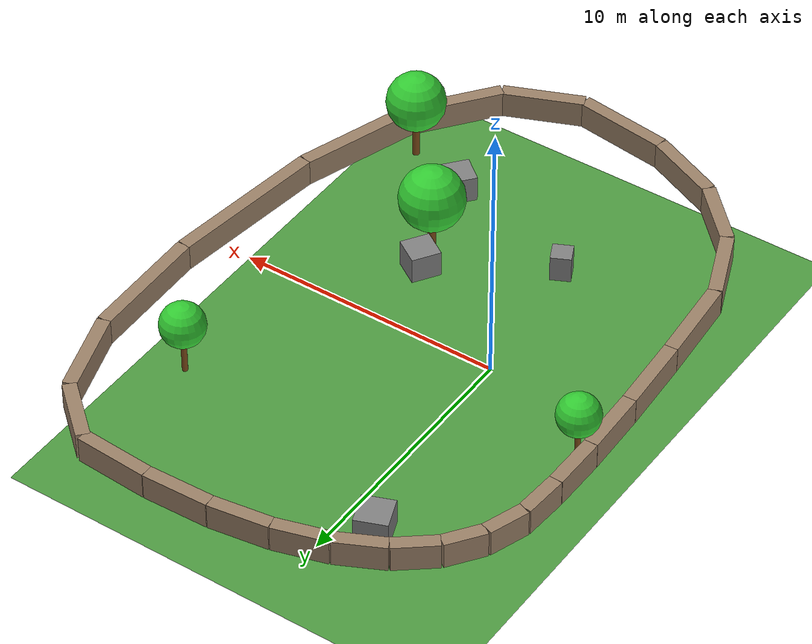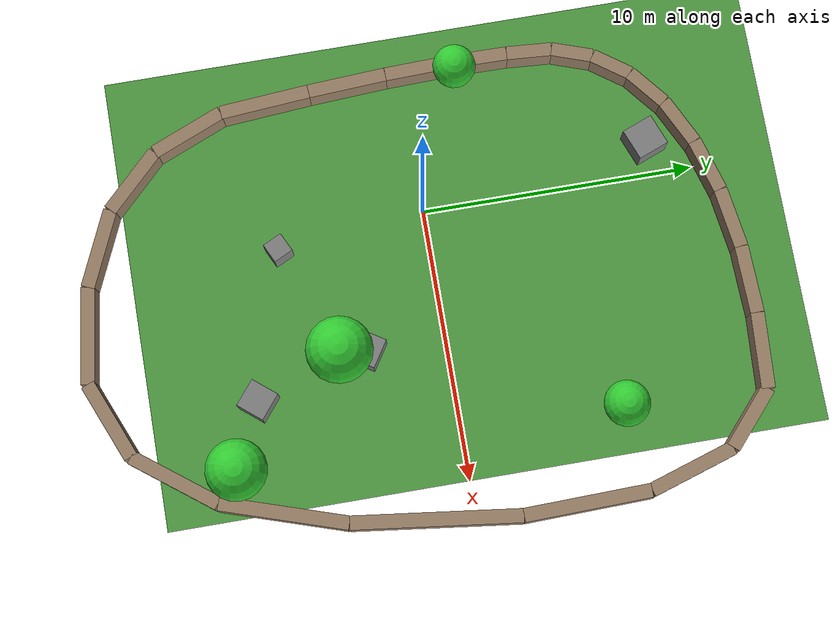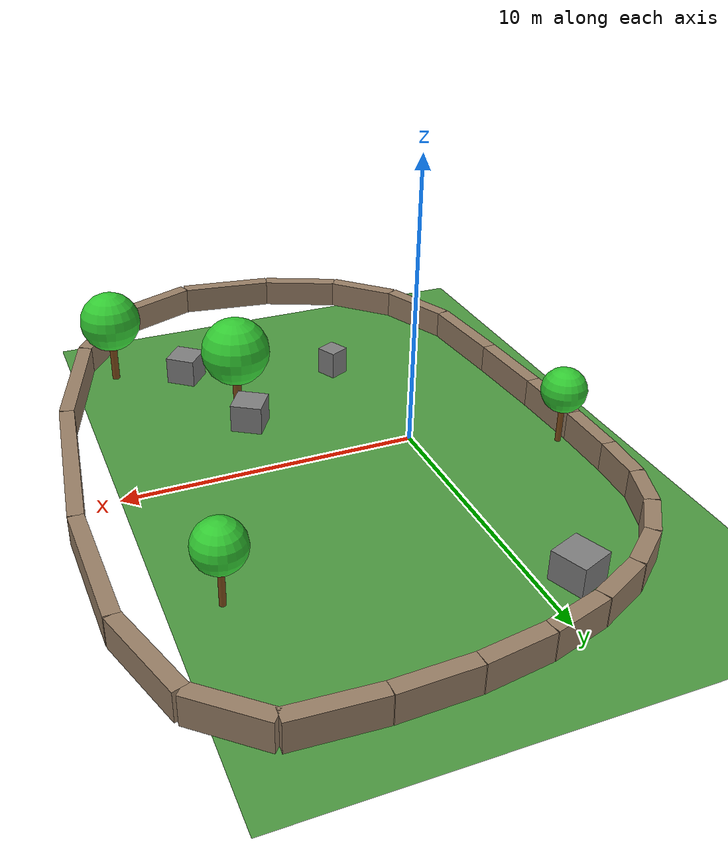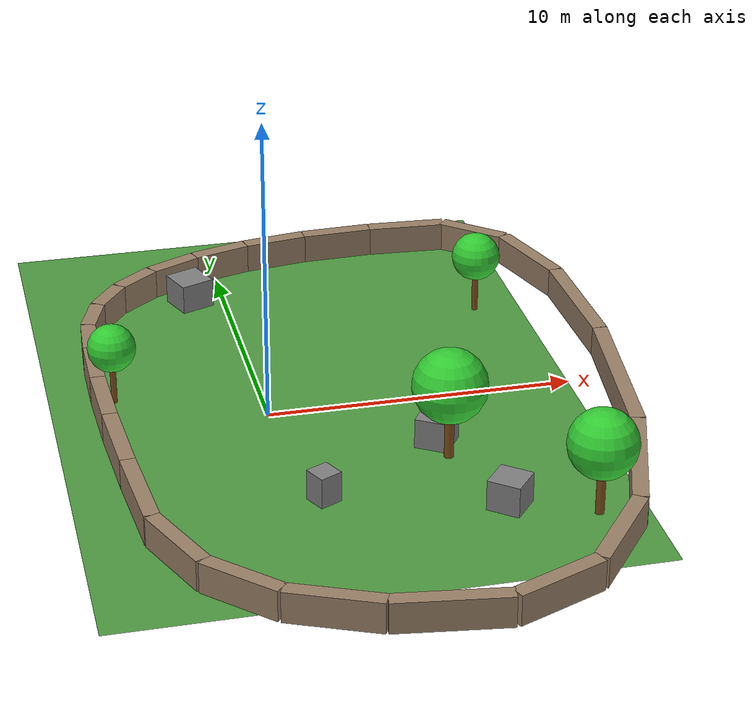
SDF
<?xml version="1.0" ?>
<sdf version="1.6">
  <world name="eval_lvl5_ep000">
    <light name="sun" type="directional">
      <cast_shadows>true</cast_shadows>
      <diffuse>0.8 0.8 0.8 1</diffuse>
      <specular>0.2 0.2 0.2 1</specular>
      <pose>0 0 10 0 0 0</pose>
      <direction>-0.5 0.5 -1</direction>
    </light>
    <include>
      <uri>model://ground_plane</uri>
    </include>
    <physics type="ode">
      <max_step_size>0.001</max_step_size>
      <real_time_factor>1</real_time_factor>
      <real_time_update_rate>1000</real_time_update_rate>
    </physics>
    <gravity>0 0 -9.8</gravity>
    <atmosphere type="adiabatic"/>
    <scene>
      <ambient>0.4 0.4 0.4 1</ambient>
      <background>0.7 0.7 0.7 1</background>
      <shadows>1</shadows>
    </scene>
    <model name="eval_lvl5_ep000_field">
      <static>true</static>
      <link name="link">
        <collision name="collision">
          <geometry>
            <plane>
              <normal>0 0 1</normal>
              <size>16.735694553609477 23.920495001508208</size>
            </plane>
          </geometry>
        </collision>
        <visual name="visual">
          <geometry>
            <plane>
              <normal>0 0 1</normal>
              <size>16.735694553609477 23.920495001508208</size>
            </plane>
          </geometry>
          <material>
            <script>
              <uri>file://media/materials/scripts/gazebo.material</uri>
              <name>Gazebo/Grass</name>
            </script>
          </material>
        </visual>
      </link>
      <pose>1.6125757476920934 1.0931630792911786 0.01 0 0 0</pose>
    </model>
    <model name="eval_lvl5_ep000_boundary_0">
      <static>true</static>
      <pose>-4.800457919085142 -5.055350329046413 0.5 0 0 -1.490851708856075</pose>
      <link name="link">
        <collision name="collision">
          <geometry>
            <box>
              <size>3.2945891925479134 0.5 1.0</size>
            </box>
          </geometry>
        </collision>
        <visual name="visual">
          <geometry>
            <box>
              <size>3.2945891925479134 0.5 1.0</size>
            </box>
          </geometry>
          <material>
            <ambient>0.4 0.3 0.2 1</ambient>
            <diffuse>0.6 0.5 0.4 1</diffuse>
          </material>
        </visual>
      </link>
    </model>
    <model name="eval_lvl5_ep000_boundary_1">
      <static>true</static>
      <pose>-4.134979083006348 -7.988133066880042 0.5 0 0 -1.1785729148689155</pose>
      <link name="link">
        <collision name="collision">
          <geometry>
            <box>
              <size>2.793644021988193 0.5 1.0</size>
            </box>
          </geometry>
        </collision>
        <visual name="visual">
          <geometry>
            <box>
              <size>2.793644021988193 0.5 1.0</size>
            </box>
          </geometry>
          <material>
            <ambient>0.4 0.3 0.2 1</ambient>
            <diffuse>0.6 0.5 0.4 1</diffuse>
          </material>
        </visual>
      </link>
    </model>
    <model name="eval_lvl5_ep000_boundary_2">
      <static>true</static>
      <pose>-2.6647509929640183 -10.218347870405477 0.5 0 0 -0.7870849704738967</pose>
      <link name="link">
        <collision name="collision">
          <geometry>
            <box>
              <size>2.652738589396461 0.5 1.0</size>
            </box>
          </geometry>
        </collision>
        <visual name="visual">
          <geometry>
            <box>
              <size>2.652738589396461 0.5 1.0</size>
            </box>
          </geometry>
          <material>
            <ambient>0.4 0.3 0.2 1</ambient>
            <diffuse>0.6 0.5 0.4 1</diffuse>
          </material>
        </visual>
      </link>
    </model>
    <model name="eval_lvl5_ep000_boundary_3">
      <static>true</static>
      <pose>-0.38977364895815303 -11.745994739622715 0.5 0 0 -0.4139835599299639</pose>
      <link name="link">
        <collision name="collision">
          <geometry>
            <box>
              <size>2.9243876716163637 0.5 1.0</size>
            </box>
          </geometry>
        </collision>
        <visual name="visual">
          <geometry>
            <box>
              <size>2.9243876716163637 0.5 1.0</size>
            </box>
          </geometry>
          <material>
            <ambient>0.4 0.3 0.2 1</ambient>
            <diffuse>0.6 0.5 0.4 1</diffuse>
          </material>
        </visual>
      </link>
    </model>
    <model name="eval_lvl5_ep000_boundary_4">
      <static>true</static>
      <pose>2.689952949011248 -12.571073674531757 0.5 0 0 -0.13523532539314187</pose>
      <link name="link">
        <collision name="collision">
          <geometry>
            <box>
              <size>3.514187048561351 0.5 1.0</size>
            </box>
          </geometry>
        </collision>
        <visual name="visual">
          <geometry>
            <box>
              <size>3.514187048561351 0.5 1.0</size>
            </box>
          </geometry>
          <material>
            <ambient>0.4 0.3 0.2 1</ambient>
            <diffuse>0.6 0.5 0.4 1</diffuse>
          </material>
        </visual>
      </link>
    </model>
    <model name="eval_lvl5_ep000_boundary_5">
      <static>true</static>
      <pose>5.832249929400796 -12.228880020192529 0.5 0 0 0.39189224469863115</pose>
      <link name="link">
        <collision name="collision">
          <geometry>
            <box>
              <size>3.032383834512504 0.5 1.0</size>
            </box>
          </geometry>
        </collision>
        <visual name="visual">
          <geometry>
            <box>
              <size>3.032383834512504 0.5 1.0</size>
            </box>
          </geometry>
          <material>
            <ambient>0.4 0.3 0.2 1</ambient>
            <diffuse>0.6 0.5 0.4 1</diffuse>
          </material>
        </visual>
      </link>
    </model>
    <model name="eval_lvl5_ep000_boundary_6">
      <static>true</static>
      <pose>8.294938420667105 -10.254709121664956 0.5 0 0 0.9203892626120022</pose>
      <link name="link">
        <collision name="collision">
          <geometry>
            <box>
              <size>3.5059417672607043 0.5 1.0</size>
            </box>
          </geometry>
        </collision>
        <visual name="visual">
          <geometry>
            <box>
              <size>3.5059417672607043 0.5 1.0</size>
            </box>
          </geometry>
          <material>
            <ambient>0.4 0.3 0.2 1</ambient>
            <diffuse>0.6 0.5 0.4 1</diffuse>
          </material>
        </visual>
      </link>
    </model>
    <model name="eval_lvl5_ep000_boundary_7">
      <static>true</static>
      <pose>10.078018422810171 -6.648560978949034 0.5 0 0 1.2553211123357346</pose>
      <link name="link">
        <collision name="collision">
          <geometry>
            <box>
              <size>4.651702750510546 0.5 1.0</size>
            </box>
          </geometry>
        </collision>
        <visual name="visual">
          <geometry>
            <box>
              <size>4.651702750510546 0.5 1.0</size>
            </box>
          </geometry>
          <material>
            <ambient>0.4 0.3 0.2 1</ambient>
            <diffuse>0.6 0.5 0.4 1</diffuse>
          </material>
        </visual>
      </link>
    </model>
    <model name="eval_lvl5_ep000_boundary_8">
      <static>true</static>
      <pose>11.18148993583 -1.4104355920447678 0.5 0 0 1.4453188128329126</pose>
      <link name="link">
        <collision name="collision">
          <geometry>
            <box>
              <size>6.102088505656533 0.5 1.0</size>
            </box>
          </geometry>
        </collision>
        <visual name="visual">
          <geometry>
            <box>
              <size>6.102088505656533 0.5 1.0</size>
            </box>
          </geometry>
          <material>
            <ambient>0.4 0.3 0.2 1</ambient>
            <diffuse>0.6 0.5 0.4 1</diffuse>
          </material>
        </visual>
      </link>
    </model>
    <model name="eval_lvl5_ep000_boundary_9">
      <static>true</static>
      <pose>11.507796588734202 3.90765073668621 0.5 0 0 1.5950282788098689</pose>
      <link name="link">
        <collision name="collision">
          <geometry>
            <box>
              <size>4.583404241454112 0.5 1.0</size>
            </box>
          </geometry>
        </collision>
        <visual name="visual">
          <geometry>
            <box>
              <size>4.583404241454112 0.5 1.0</size>
            </box>
          </geometry>
          <material>
            <ambient>0.4 0.3 0.2 1</ambient>
            <diffuse>0.6 0.5 0.4 1</diffuse>
          </material>
        </visual>
      </link>
    </model>
    <model name="eval_lvl5_ep000_boundary_10">
      <static>true</static>
      <pose>10.959382010530389 7.753681704882265 0.5 0 0 1.8777475654668256</pose>
      <link name="link">
        <collision name="collision">
          <geometry>
            <box>
              <size>3.262494932341646 0.5 1.0</size>
            </box>
          </geometry>
        </collision>
        <visual name="visual">
          <geometry>
            <box>
              <size>3.262494932341646 0.5 1.0</size>
            </box>
          </geometry>
          <material>
            <ambient>0.4 0.3 0.2 1</ambient>
            <diffuse>0.6 0.5 0.4 1</diffuse>
          </material>
        </visual>
      </link>
    </model>
    <model name="eval_lvl5_ep000_boundary_11">
      <static>true</static>
      <pose>9.536246201218564 10.127657312543397 0.5 0 0 2.4197224492846305</pose>
      <link name="link">
        <collision name="collision">
          <geometry>
            <box>
              <size>2.478773963029256 0.5 1.0</size>
            </box>
          </geometry>
        </collision>
        <visual name="visual">
          <geometry>
            <box>
              <size>2.478773963029256 0.5 1.0</size>
            </box>
          </geometry>
          <material>
            <ambient>0.4 0.3 0.2 1</ambient>
            <diffuse>0.6 0.5 0.4 1</diffuse>
          </material>
        </visual>
      </link>
    </model>
    <model name="eval_lvl5_ep000_boundary_12">
      <static>true</static>
      <pose>7.238389160798725 11.029577559669606 0.5 0 0 3.081016266677216</pose>
      <link name="link">
        <collision name="collision">
          <geometry>
            <box>
              <size>2.7402437791718515 0.5 1.0</size>
            </box>
          </geometry>
        </collision>
        <visual name="visual">
          <geometry>
            <box>
              <size>2.7402437791718515 0.5 1.0</size>
            </box>
          </geometry>
          <material>
            <ambient>0.4 0.3 0.2 1</ambient>
            <diffuse>0.6 0.5 0.4 1</diffuse>
          </material>
        </visual>
      </link>
    </model>
    <model name="eval_lvl5_ep000_boundary_13">
      <static>true</static>
      <pose>4.6381200479141365 11.073728084769611 0.5 0 0 -3.110129843808412</pose>
      <link name="link">
        <collision name="collision">
          <geometry>
            <box>
              <size>2.4665412940620715 0.5 1.0</size>
            </box>
          </geometry>
        </collision>
        <visual name="visual">
          <geometry>
            <box>
              <size>2.4665412940620715 0.5 1.0</size>
            </box>
          </geometry>
          <material>
            <ambient>0.4 0.3 0.2 1</ambient>
            <diffuse>0.6 0.5 0.4 1</diffuse>
          </material>
        </visual>
      </link>
    </model>
    <model name="eval_lvl5_ep000_boundary_14">
      <static>true</static>
      <pose>2.307748021208056 10.87439452635213 0.5 0 0 -2.9963744572147046</pose>
      <link name="link">
        <collision name="collision">
          <geometry>
            <box>
              <size>2.218777549337644 0.5 1.0</size>
            </box>
          </geometry>
        </collision>
        <visual name="visual">
          <geometry>
            <box>
              <size>2.218777549337644 0.5 1.0</size>
            </box>
          </geometry>
          <material>
            <ambient>0.4 0.3 0.2 1</ambient>
            <diffuse>0.6 0.5 0.4 1</diffuse>
          </material>
        </visual>
      </link>
    </model>
    <model name="eval_lvl5_ep000_boundary_15">
      <static>true</static>
      <pose>0.24727308068048426 10.431576884417167 0.5 0 0 -2.8563882341562596</pose>
      <link name="link">
        <collision name="collision">
          <geometry>
            <box>
              <size>2.006584048497376 0.5 1.0</size>
            </box>
          </geometry>
        </collision>
        <visual name="visual">
          <geometry>
            <box>
              <size>2.006584048497376 0.5 1.0</size>
            </box>
          </geometry>
          <material>
            <ambient>0.4 0.3 0.2 1</ambient>
            <diffuse>0.6 0.5 0.4 1</diffuse>
          </material>
        </visual>
      </link>
    </model>
    <model name="eval_lvl5_ep000_boundary_16">
      <static>true</static>
      <pose>-1.5433047736685777 9.745275158964718 0.5 0 0 -2.6875438937767444</pose>
      <link name="link">
        <collision name="collision">
          <geometry>
            <box>
              <size>1.8422929045164016 0.5 1.0</size>
            </box>
          </geometry>
        </collision>
        <visual name="visual">
          <geometry>
            <box>
              <size>1.8422929045164016 0.5 1.0</size>
            </box>
          </geometry>
          <material>
            <ambient>0.4 0.3 0.2 1</ambient>
            <diffuse>0.6 0.5 0.4 1</diffuse>
          </material>
        </visual>
      </link>
    </model>
    <model name="eval_lvl5_ep000_boundary_17">
      <static>true</static>
      <pose>-3.0067336379300027 8.831474220667012 0.5 0 0 -2.4656176296009633</pose>
      <link name="link">
        <collision name="collision">
          <geometry>
            <box>
              <size>1.6295767632327824 0.5 1.0</size>
            </box>
          </geometry>
        </collision>
        <visual name="visual">
          <geometry>
            <box>
              <size>1.6295767632327824 0.5 1.0</size>
            </box>
          </geometry>
          <material>
            <ambient>0.4 0.3 0.2 1</ambient>
            <diffuse>0.6 0.5 0.4 1</diffuse>
          </material>
        </visual>
      </link>
    </model>
    <model name="eval_lvl5_ep000_boundary_18">
      <static>true</static>
      <pose>-4.085761608194664 7.7061589401962705 0.5 0 0 -2.1950629404228232</pose>
      <link name="link">
        <collision name="collision">
          <geometry>
            <box>
              <size>1.5172351291101194 0.5 1.0</size>
            </box>
          </geometry>
        </collision>
        <visual name="visual">
          <geometry>
            <box>
              <size>1.5172351291101194 0.5 1.0</size>
            </box>
          </geometry>
          <material>
            <ambient>0.4 0.3 0.2 1</ambient>
            <diffuse>0.6 0.5 0.4 1</diffuse>
          </material>
        </visual>
      </link>
    </model>
    <model name="eval_lvl5_ep000_boundary_19">
      <static>true</static>
      <pose>-4.780388684462561 6.369329317552496 0.5 0 0 -1.9059395771709304</pose>
      <link name="link">
        <collision name="collision">
          <geometry>
            <box>
              <size>1.5275762420397112 0.5 1.0</size>
            </box>
          </geometry>
        </collision>
        <visual name="visual">
          <geometry>
            <box>
              <size>1.5275762420397112 0.5 1.0</size>
            </box>
          </geometry>
          <material>
            <ambient>0.4 0.3 0.2 1</ambient>
            <diffuse>0.6 0.5 0.4 1</diffuse>
          </material>
        </visual>
      </link>
    </model>
    <model name="eval_lvl5_ep000_boundary_20">
      <static>true</static>
      <pose>-5.090614866733693 4.820985352735688 0.5 0 0 -1.6420289984953274</pose>
      <link name="link">
        <collision name="collision">
          <geometry>
            <box>
              <size>1.658306558505798 0.5 1.0</size>
            </box>
          </geometry>
        </collision>
        <visual name="visual">
          <geometry>
            <box>
              <size>1.658306558505798 0.5 1.0</size>
            </box>
          </geometry>
          <material>
            <ambient>0.4 0.3 0.2 1</ambient>
            <diffuse>0.6 0.5 0.4 1</diffuse>
          </material>
        </visual>
      </link>
    </model>
    <model name="eval_lvl5_ep000_boundary_21">
      <static>true</static>
      <pose>-5.160999358960222 2.9631385206968135 0.5 0 0 -1.5818277630755444</pose>
      <link name="link">
        <collision name="collision">
          <geometry>
            <box>
              <size>2.061717974798661 0.5 1.0</size>
            </box>
          </geometry>
        </collision>
        <visual name="visual">
          <geometry>
            <box>
              <size>2.061717974798661 0.5 1.0</size>
            </box>
          </geometry>
          <material>
            <ambient>0.4 0.3 0.2 1</ambient>
            <diffuse>0.6 0.5 0.4 1</diffuse>
          </material>
        </visual>
      </link>
    </model>
    <model name="eval_lvl5_ep000_boundary_22">
      <static>true</static>
      <pose>-5.136101365094306 0.6978002963868384 0.5 0 0 -1.54142576674915</pose>
      <link name="link">
        <collision name="collision">
          <geometry>
            <box>
              <size>2.4701492560358456 0.5 1.0</size>
            </box>
          </geometry>
        </collision>
        <visual name="visual">
          <geometry>
            <box>
              <size>2.4701492560358456 0.5 1.0</size>
            </box>
          </geometry>
          <material>
            <ambient>0.4 0.3 0.2 1</ambient>
            <diffuse>0.6 0.5 0.4 1</diffuse>
          </material>
        </visual>
      </link>
    </model>
    <model name="eval_lvl5_ep000_boundary_23">
      <static>true</static>
      <pose>-5.015920885135946 -1.975029320194237 0.5 0 0 -1.5125215762468027</pose>
      <link name="link">
        <collision name="collision">
          <geometry>
            <box>
              <size>2.8814665815245855 0.5 1.0</size>
            </box>
          </geometry>
        </collision>
        <visual name="visual">
          <geometry>
            <box>
              <size>2.8814665815245855 0.5 1.0</size>
            </box>
          </geometry>
          <material>
            <ambient>0.4 0.3 0.2 1</ambient>
            <diffuse>0.6 0.5 0.4 1</diffuse>
          </material>
        </visual>
      </link>
    </model>
    <model name="obstacle_0">
      <static>true</static>
      <pose>-1.1663779017530445 8.41703075849251 0.5 0 0 1.9402526848852661</pose>
      <link name="link">
        <collision name="collision">
          <geometry>
            <box>
              <size>1.1795060432001985 1.1795060432001985 1.0</size>
            </box>
          </geometry>
        </collision>
        <visual name="visual">
          <geometry>
            <box>
              <size>1.1795060432001985 1.1795060432001985 1.0</size>
            </box>
          </geometry>
          <material>
            <ambient>0.3 0.3 0.3 1</ambient>
            <diffuse>0.5 0.5 0.5 1</diffuse>
          </material>
        </visual>
      </link>
    </model>
    <model name="obstacle_1">
      <static>true</static>
      <pose>5.970554849450837 -6.961996933048262 0.5 0 0 5.598861418592702</pose>
      <link name="link">
        <collision name="collision">
          <geometry>
            <box>
              <size>1.0671568125233963 1.0671568125233963 1.0</size>
            </box>
          </geometry>
        </collision>
        <visual name="visual">
          <geometry>
            <box>
              <size>1.0671568125233963 1.0671568125233963 1.0</size>
            </box>
          </geometry>
          <material>
            <ambient>0.3 0.3 0.3 1</ambient>
            <diffuse>0.5 0.5 0.5 1</diffuse>
          </material>
        </visual>
      </link>
    </model>
    <model name="obstacle_2">
      <static>true</static>
      <pose>4.789618713053176 -2.8638787785048336 0.5 0 0 5.710641069658068</pose>
      <link name="link">
        <collision name="collision">
          <geometry>
            <box>
              <size>1.0926967242785421 1.0926967242785421 1.0</size>
            </box>
          </geometry>
        </collision>
        <visual name="visual">
          <geometry>
            <box>
              <size>1.0926967242785421 1.0926967242785421 1.0</size>
            </box>
          </geometry>
          <material>
            <ambient>0.3 0.3 0.3 1</ambient>
            <diffuse>0.5 0.5 0.5 1</diffuse>
          </material>
        </visual>
      </link>
    </model>
    <model name="obstacle_3">
      <static>true</static>
      <pose>0.6616660167835704 -5.409112858529618 0.5 0 0 0.44966482774324595</pose>
      <link name="link">
        <collision name="collision">
          <geometry>
            <box>
              <size>0.7488510608666854 0.7488510608666854 1.0</size>
            </box>
          </geometry>
        </collision>
        <visual name="visual">
          <geometry>
            <box>
              <size>0.7488510608666854 0.7488510608666854 1.0</size>
            </box>
          </geometry>
          <material>
            <ambient>0.3 0.3 0.3 1</ambient>
            <diffuse>0.5 0.5 0.5 1</diffuse>
          </material>
        </visual>
      </link>
    </model>
    <model name="obstacle_4">
      <static>true</static>
      <pose>8.44828531718212 -7.944120174332568 1.0 0 0 1.550730710416903</pose>
      <link name="link">
        <collision name="trunk_collision">
          <geometry>
            <cylinder>
              <radius>0.13615487091903172</radius>
              <length>2.0</length>
            </cylinder>
          </geometry>
        </collision>
        <visual name="trunk_visual">
          <geometry>
            <cylinder>
              <radius>0.13615487091903172</radius>
              <length>2.0</length>
            </cylinder>
          </geometry>
          <material>
            <ambient>0.4 0.2 0.0 1</ambient>
            <diffuse>0.5 0.3 0.1 1</diffuse>
          </material>
        </visual>
        <collision name="crown_collision">
          <pose>0 0 1.3615487091903171 0 0 0</pose>
          <geometry>
            <sphere>
              <radius>1.0892389673522538</radius>
            </sphere>
          </geometry>
        </collision>
        <visual name="crown_visual">
          <pose>0 0 1.3615487091903171 0 0 0</pose>
          <geometry>
            <sphere>
              <radius>1.0892389673522538</radius>
            </sphere>
          </geometry>
          <material>
            <ambient>0.1 0.5 0.1 1</ambient>
            <diffuse>0.2 0.8 0.2 1</diffuse>
          </material>
        </visual>
      </link>
    </model>
    <model name="obstacle_5">
      <static>true</static>
      <pose>-4.670183454255946 1.9387562550077515 1.0 0 0 6.021796084686945</pose>
      <link name="link">
        <collision name="trunk_collision">
          <geometry>
            <cylinder>
              <radius>0.09725243786806788</radius>
              <length>2.0</length>
            </cylinder>
          </geometry>
        </collision>
        <visual name="trunk_visual">
          <geometry>
            <cylinder>
              <radius>0.09725243786806788</radius>
              <length>2.0</length>
            </cylinder>
          </geometry>
          <material>
            <ambient>0.4 0.2 0.0 1</ambient>
            <diffuse>0.5 0.3 0.1 1</diffuse>
          </material>
        </visual>
        <collision name="crown_collision">
          <pose>0 0 0.9725243786806788 0 0 0</pose>
          <geometry>
            <sphere>
              <radius>0.778019502944543</radius>
            </sphere>
          </geometry>
        </collision>
        <visual name="crown_visual">
          <pose>0 0 0.9725243786806788 0 0 0</pose>
          <geometry>
            <sphere>
              <radius>0.778019502944543</radius>
            </sphere>
          </geometry>
          <material>
            <ambient>0.1 0.5 0.1 1</ambient>
            <diffuse>0.2 0.8 0.2 1</diffuse>
          </material>
        </visual>
      </link>
    </model>
    <model name="obstacle_6">
      <static>true</static>
      <pose>8.409381720624957 5.77591843441464 1.0 0 0 5.6431339644824865</pose>
      <link name="link">
        <collision name="trunk_collision">
          <geometry>
            <cylinder>
              <radius>0.10239349200922471</radius>
              <length>2.0</length>
            </cylinder>
          </geometry>
        </collision>
        <visual name="trunk_visual">
          <geometry>
            <cylinder>
              <radius>0.10239349200922471</radius>
              <length>2.0</length>
            </cylinder>
          </geometry>
          <material>
            <ambient>0.4 0.2 0.0 1</ambient>
            <diffuse>0.5 0.3 0.1 1</diffuse>
          </material>
        </visual>
        <collision name="crown_collision">
          <pose>0 0 1.023934920092247 0 0 0</pose>
          <geometry>
            <sphere>
              <radius>0.8191479360737977</radius>
            </sphere>
          </geometry>
        </collision>
        <visual name="crown_visual">
          <pose>0 0 1.023934920092247 0 0 0</pose>
          <geometry>
            <sphere>
              <radius>0.8191479360737977</radius>
            </sphere>
          </geometry>
          <material>
            <ambient>0.1 0.5 0.1 1</ambient>
            <diffuse>0.2 0.8 0.2 1</diffuse>
          </material>
        </visual>
      </link>
    </model>
    <model name="obstacle_7">
      <static>true</static>
      <pose>4.941374955614226 -3.782829538292754 1.0 0 0 1.1242817485324645</pose>
      <link name="link">
        <collision name="trunk_collision">
          <geometry>
            <cylinder>
              <radius>0.14875835762107426</radius>
              <length>2.0</length>
            </cylinder>
          </geometry>
        </collision>
        <visual name="trunk_visual">
          <geometry>
            <cylinder>
              <radius>0.14875835762107426</radius>
              <length>2.0</length>
            </cylinder>
          </geometry>
          <material>
            <ambient>0.4 0.2 0.0 1</ambient>
            <diffuse>0.5 0.3 0.1 1</diffuse>
          </material>
        </visual>
        <collision name="crown_collision">
          <pose>0 0 1.4875835762107426 0 0 0</pose>
          <geometry>
            <sphere>
              <radius>1.190066860968594</radius>
            </sphere>
          </geometry>
        </collision>
        <visual name="crown_visual">
          <pose>0 0 1.4875835762107426 0 0 0</pose>
          <geometry>
            <sphere>
              <radius>1.190066860968594</radius>
            </sphere>
          </geometry>
          <material>
            <ambient>0.1 0.5 0.1 1</ambient>
            <diffuse>0.2 0.8 0.2 1</diffuse>
          </material>
        </visual>
      </link>
    </model>
    <plugin name="gazebo_ros_state" filename="libgazebo_ros_state.so">
      <ros>
        <namespace>/</namespace>
      </ros>
    </plugin>
  </world>
</sdf>
